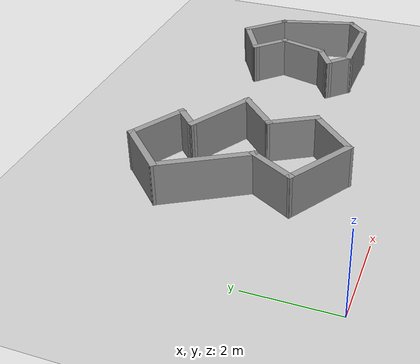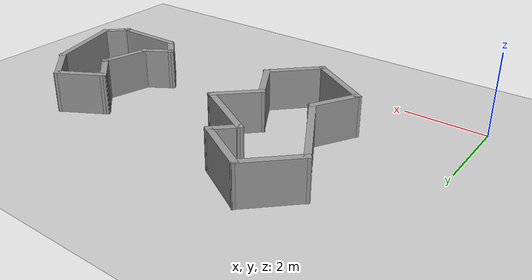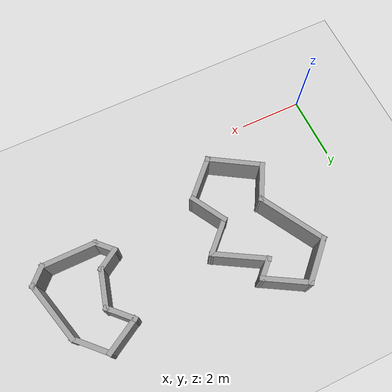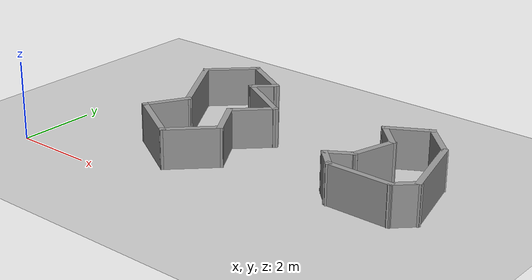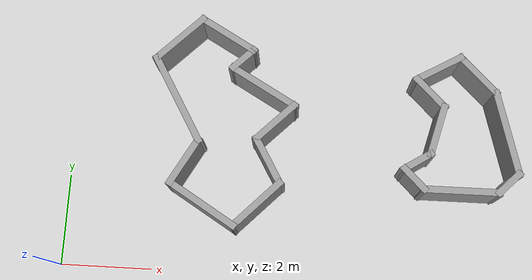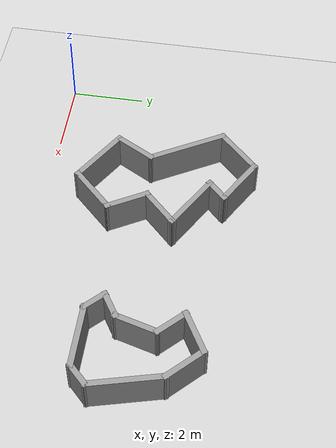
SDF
<sdf version="1.6">
 <world name="default">
  <light name="sun" type="directional">
   <pose>0 0 10 0 -0 0</pose>
   <diffuse>0.8 0.8 0.8 1</diffuse>
   <specular>0.1 0.1 0.1 1</specular>
   <attenuation>
    <range>1000</range>
    <constant>0.9</constant>
    <linear>0.01</linear>
    <quadratic>0.001</quadratic>
   </attenuation>
   <direction>-0.5 0.5 -1</direction>
  </light>
  <model name="ground_plane">
   <static>1</static>
   <link name="link">
    <collision name="collision">
     <geometry><plane><normal>0 0 1</normal><size>100 100</size></plane></geometry>
     <surface><friction><ode><mu>100</mu><mu2>50</mu2></ode></friction></surface>
    </collision>
    <visual name="visual">
     <cast_shadows>0</cast_shadows>
     <geometry><plane><normal>0 0 1</normal><size>100 100</size></plane></geometry>
     <material>
      <script><uri>file://media/materials/scripts/gazebo.material</uri><name>Gazebo/Grey</name></script>
     </material>
    </visual>
   </link>
  </model>
  <gravity>0 0 -9.8</gravity>
  <magnetic_field>6e-06 2.3e-05 -4.2e-05</magnetic_field>
  <atmosphere type="adiabatic"/>
  <physics name="default_physics" default="0" type="ode">
   <max_step_size>0.001</max_step_size>
   <real_time_factor>1</real_time_factor>
   <real_time_update_rate>1000</real_time_update_rate>
  </physics>
  <scene><ambient>0.4 0.4 0.4 1</ambient><background>0.7 0.7 0.7 1</background><shadows>1</shadows></scene>
  <spherical_coordinates>
   <surface_model>EARTH_WGS84</surface_model>
   <latitude_deg>0</latitude_deg>
   <longitude_deg>0</longitude_deg>
   <elevation>0</elevation>
   <heading_deg>0</heading_deg>
  </spherical_coordinates>
  <model name="w1">
   <pose>5.85554 3.22705 0 0 -0 0</pose>
   <link name="Wall_25">
    <collision name="Wall_25_Collision">
     <geometry><box><size>1.5 0.15 1</size></box></geometry>
     <pose>0 0 0.5 0 -0 0</pose>
    </collision>
    <visual name="Wall_25_Visual">
     <pose>0 0 0.5 0 -0 0</pose>
     <geometry><box><size>1.5 0.15 1</size></box></geometry>
     <material>
      <script><uri>file://media/materials/scripts/gazebo.material</uri><name>Gazebo/Grey</name></script>
      <ambient>1 1 1 1</ambient>
     </material>
    </visual>
    <pose>-2.44504 1.95445 0 0 0 -0.523649</pose>
   </link>
   <link name="Wall_26">
    <collision name="Wall_26_Collision">
     <geometry><box><size>0.75 0.15 1</size></box></geometry>
     <pose>0 0 0.5 0 -0 0</pose>
    </collision>
    <visual name="Wall_26_Visual">
     <pose>0 0 0.5 0 -0 0</pose>
     <geometry><box><size>0.75 0.15 1</size></box></geometry>
     <material>
      <script><uri>file://media/materials/scripts/gazebo.material</uri><name>Gazebo/Grey</name></script>
      <ambient>1 1 1 1</ambient>
     </material>
    </visual>
    <pose>-2.07304 1.40495 0 0 0 -2.35737</pose>
   </link>
   <link name="Wall_27">
    <collision name="Wall_27_Collision">
     <geometry><box><size>1.75 0.15 1</size></box></geometry>
     <pose>0 0 0.5 0 -0 0</pose>
    </collision>
    <visual name="Wall_27_Visual">
     <pose>0 0 0.5 0 -0 0</pose>
     <geometry><box><size>1.75 0.15 1</size></box></geometry>
     <material>
      <script><uri>file://media/materials/scripts/gazebo.material</uri><name>Gazebo/Grey</name></script>
      <ambient>1 1 1 1</ambient>
     </material>
    </visual>
    <pose>-1.59254 0.792952 0 0 0 -0.523487</pose>
   </link>
   <link name="Wall_31">
    <collision name="Wall_31_Collision">
     <geometry><box><size>1.5 0.15 1</size></box></geometry>
     <pose>0 0 0.5 0 -0 0</pose>
    </collision>
    <visual name="Wall_31_Visual">
     <pose>0 0 0.5 0 -0 0</pose>
     <geometry><box><size>1.5 0.15 1</size></box></geometry>
     <material>
      <script><uri>file://media/materials/scripts/gazebo.material</uri><name>Gazebo/Grey</name></script>
      <ambient>1 1 1 1</ambient>
     </material>
    </visual>
    <pose>-3.50704 1.81495 0 0 0 -2.35672</pose>
   </link>
   <link name="Wall_32">
    <collision name="Wall_32_Collision">
     <geometry><box><size>2.25 0.15 1</size></box></geometry>
     <pose>0 0 0.5 0 -0 0</pose>
    </collision>
    <visual name="Wall_32_Visual">
     <pose>0 0 0.5 0 -0 0</pose>
     <geometry><box><size>2.25 0.15 1</size></box></geometry>
     <material>
      <script><uri>file://media/materials/scripts/gazebo.material</uri><name>Gazebo/Grey</name></script>
      <ambient>1 1 1 1</ambient>
     </material>
    </visual>
    <pose>-3.45954 0.428452 0 0 0 -1.04728</pose>
   </link>
   <link name="Wall_33">
    <collision name="Wall_33_Collision">
     <geometry><box><size>1.24192 0.15 1</size></box></geometry>
     <pose>0 0 0.5 0 -0 0</pose>
    </collision>
    <visual name="Wall_33_Visual">
     <pose>0 0 0.5 0 -0 0</pose>
     <geometry><box><size>1.24192 0.15 1</size></box></geometry>
     <material>
      <script><uri>file://media/materials/scripts/gazebo.material</uri><name>Gazebo/Grey</name></script>
      <ambient>1 1 1 1</ambient>
     </material>
    </visual>
    <pose>-3.20104 -0.957548 0 0 0 -2.08074</pose>
   </link>
   <link name="Wall_35">
    <collision name="Wall_35_Collision">
     <geometry><box><size>1.25 0.15 1</size></box></geometry>
     <pose>0 0 0.5 0 -0 0</pose>
    </collision>
    <visual name="Wall_35_Visual">
     <pose>0 0 0.5 0 -0 0</pose>
     <geometry><box><size>1.25 0.15 1</size></box></geometry>
     <material>
      <script><uri>file://media/materials/scripts/gazebo.material</uri><name>Gazebo/Grey</name></script>
      <ambient>1 1 1 1</ambient>
     </material>
    </visual>
    <pose>-1.28854 0.003952 0 0 0 -2.35619</pose>
   </link>
   <link name="Wall_36">
    <collision name="Wall_36_Collision">
     <geometry><box><size>1.25 0.15 1</size></box></geometry>
     <pose>0 0 0.5 0 -0 0</pose>
    </collision>
    <visual name="Wall_36_Visual">
     <pose>0 0 0.5 0 -0 0</pose>
     <geometry><box><size>1.25 0.15 1</size></box></geometry>
     <material>
      <script><uri>file://media/materials/scripts/gazebo.material</uri><name>Gazebo/Grey</name></script>
      <ambient>1 1 1 1</ambient>
     </material>
    </visual>
    <pose>-1.40254 -0.861048 0 0 0 -1.04691</pose>
   </link>
   <link name="Wall_37">
    <collision name="Wall_37_Collision">
     <geometry><box><size>1.48778 0.15 1</size></box></geometry>
     <pose>0 0 0.5 0 -0 0</pose>
    </collision>
    <visual name="Wall_37_Visual">
     <pose>0 0 0.5 0 -0 0</pose>
     <geometry><box><size>1.48778 0.15 1</size></box></geometry>
     <material>
      <script><uri>file://media/materials/scripts/gazebo.material</uri><name>Gazebo/Grey</name></script>
      <ambient>1 1 1 1</ambient>
     </material>
    </visual>
    <pose>-1.59604 -1.81455 0 0 0 -2.34668</pose>
   </link>
   <link name="Wall_38">
    <collision name="Wall_38_Collision">
     <geometry><box><size>1.79427 0.15 1</size></box></geometry>
     <pose>0 0 0.5 0 -0 0</pose>
    </collision>
    <visual name="Wall_38_Visual">
     <pose>0 0 0.5 0 -0 0</pose>
     <geometry><box><size>1.79427 0.15 1</size></box></geometry>
     <material>
      <script><uri>file://media/materials/scripts/gazebo.material</uri><name>Gazebo/Grey</name></script>
      <ambient>1 1 1 1</ambient>
     </material>
    </visual>
    <pose>-2.76604 -1.86305 0 0 -0 2.59273</pose>
   </link>
   <link name="Wall_44">
    <collision name="Wall_44_Collision">
     <geometry><box><size>1.25 0.15 1</size></box></geometry>
     <pose>0 0 0.5 0 -0 0</pose>
    </collision>
    <visual name="Wall_44_Visual">
     <pose>0 0 0.5 0 -0 0</pose>
     <geometry><box><size>1.25 0.15 1</size></box></geometry>
     <material>
      <script><uri>file://media/materials/scripts/gazebo.material</uri><name>Gazebo/Grey</name></script>
      <ambient>1 1 1 1</ambient>
     </material>
    </visual>
    <pose>2.25196 1.40395 0 0 -0 0.52343</pose>
   </link>
   <link name="Wall_45">
    <collision name="Wall_45_Collision">
     <geometry><box><size>1.25 0.15 1</size></box></geometry>
     <pose>0 0 0.5 0 -0 0</pose>
    </collision>
    <visual name="Wall_45_Visual">
     <pose>0 0 0.5 0 -0 0</pose>
     <geometry><box><size>1.25 0.15 1</size></box></geometry>
     <material>
      <script><uri>file://media/materials/scripts/gazebo.material</uri><name>Gazebo/Grey</name></script>
      <ambient>1 1 1 1</ambient>
     </material>
    </visual>
    <pose>3.11746 1.28995 0 0 0 -0.785398</pose>
   </link>
   <link name="Wall_46">
    <collision name="Wall_46_Collision">
     <geometry><box><size>2 0.15 1</size></box></geometry>
     <pose>0 0 0.5 0 -0 0</pose>
    </collision>
    <visual name="Wall_46_Visual">
     <pose>0 0 0.5 0 -0 0</pose>
     <geometry><box><size>2 0.15 1</size></box></geometry>
     <material>
      <script><uri>file://media/materials/scripts/gazebo.material</uri><name>Gazebo/Grey</name></script>
      <ambient>1 1 1 1</ambient>
     </material>
    </visual>
    <pose>3.74546 0.007452 0 0 0 -1.30943</pose>
   </link>
   <link name="Wall_47">
    <collision name="Wall_47_Collision">
     <geometry><box><size>0.75 0.15 1</size></box></geometry>
     <pose>0 0 0.5 0 -0 0</pose>
    </collision>
    <visual name="Wall_47_Visual">
     <pose>0 0 0.5 0 -0 0</pose>
     <geometry><box><size>0.75 0.15 1</size></box></geometry>
     <material>
      <script><uri>file://media/materials/scripts/gazebo.material</uri><name>Gazebo/Grey</name></script>
      <ambient>1 1 1 1</ambient>
     </material>
    </visual>
    <pose>3.77246 -1.09805 0 0 0 -2.35619</pose>
   </link>
   <link name="Wall_48">
    <collision name="Wall_48_Collision">
     <geometry><box><size>1.75 0.15 1</size></box></geometry>
     <pose>0 0 0.5 0 -0 0</pose>
    </collision>
    <visual name="Wall_48_Visual">
     <pose>0 0 0.5 0 -0 0</pose>
     <geometry><box><size>1.75 0.15 1</size></box></geometry>
     <material>
      <script><uri>file://media/materials/scripts/gazebo.material</uri><name>Gazebo/Grey</name></script>
      <ambient>1 1 1 1</ambient>
     </material>
    </visual>
    <pose>2.76046 -1.31005 0 0 -0 3.14159</pose>
   </link>
   <link name="Wall_49">
    <collision name="Wall_49_Collision">
     <geometry><box><size>0.75 0.15 1</size></box></geometry>
     <pose>0 0 0.5 0 -0 0</pose>
    </collision>
    <visual name="Wall_49_Visual">
     <pose>0 0 0.5 0 -0 0</pose>
     <geometry><box><size>0.75 0.15 1</size></box></geometry>
     <material>
      <script><uri>file://media/materials/scripts/gazebo.material</uri><name>Gazebo/Grey</name></script>
      <ambient>1 1 1 1</ambient>
     </material>
    </visual>
    <pose>1.74846 -1.09805 0 0 -0 2.35619</pose>
   </link>
   <link name="Wall_53">
    <collision name="Wall_53_Collision">
     <geometry><box><size>1 0.15 1</size></box></geometry>
     <pose>0 0 0.5 0 -0 0</pose>
    </collision>
    <visual name="Wall_53_Visual">
     <pose>0 0 0.5 0 -0 0</pose>
     <geometry><box><size>1 0.15 1</size></box></geometry>
     <material>
      <script><uri>file://media/materials/scripts/gazebo.material</uri><name>Gazebo/Grey</name></script>
      <ambient>1 1 1 1</ambient>
     </material>
    </visual>
    <pose>2.07596 0.828452 0 0 0 -0.785398</pose>
   </link>
   <link name="Wall_55">
    <collision name="Wall_55_Collision">
     <geometry><box><size>1.25 0.15 1</size></box></geometry>
     <pose>0 0 0.5 0 -0 0</pose>
    </collision>
    <visual name="Wall_55_Visual">
     <pose>0 0 0.5 0 -0 0</pose>
     <geometry><box><size>1.25 0.15 1</size></box></geometry>
     <material>
      <script><uri>file://media/materials/scripts/gazebo.material</uri><name>Gazebo/Grey</name></script>
      <ambient>1 1 1 1</ambient>
     </material>
    </visual>
    <pose>2.23396 -0.003048 0 0 0 -1.83298</pose>
   </link>
   <link name="Wall_57">
    <collision name="Wall_57_Collision">
     <geometry><box><size>0.807309 0.15 1</size></box></geometry>
     <pose>0 0 0.5 0 -0 0</pose>
    </collision>
    <visual name="Wall_57_Visual">
     <pose>0 0 0.5 0 -0 0</pose>
     <geometry><box><size>0.807309 0.15 1</size></box></geometry>
     <material>
      <script><uri>file://media/materials/scripts/gazebo.material</uri><name>Gazebo/Grey</name></script>
      <ambient>1 1 1 1</ambient>
     </material>
    </visual>
    <pose>1.81396 -0.710048 0 0 -0 0.565212</pose>
   </link>
   <static>1</static>
  </model>
 </world>
</sdf>
